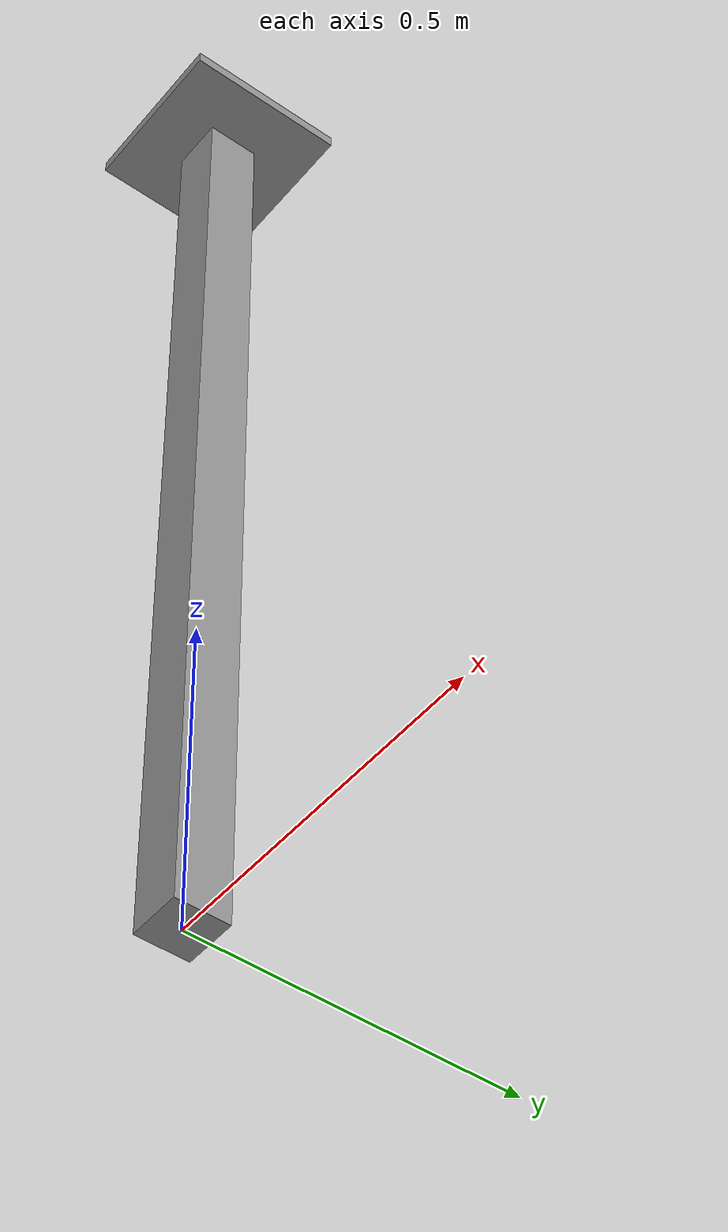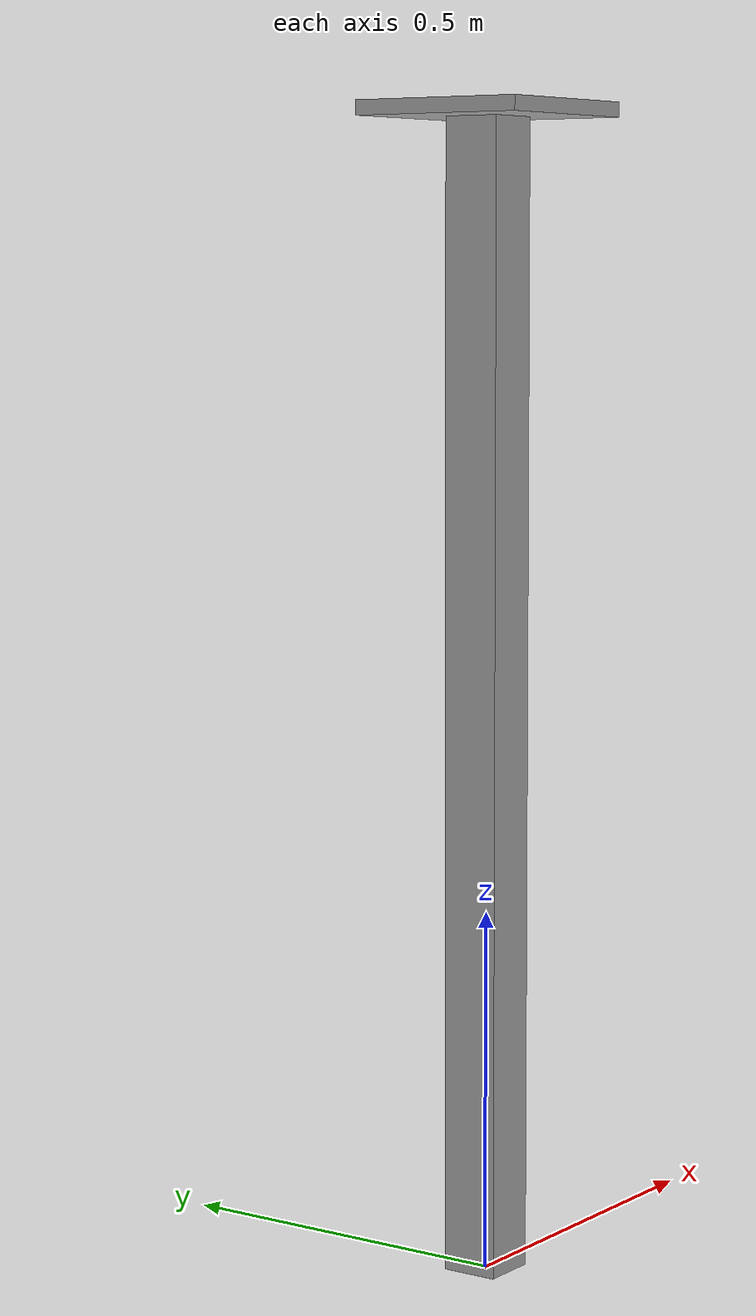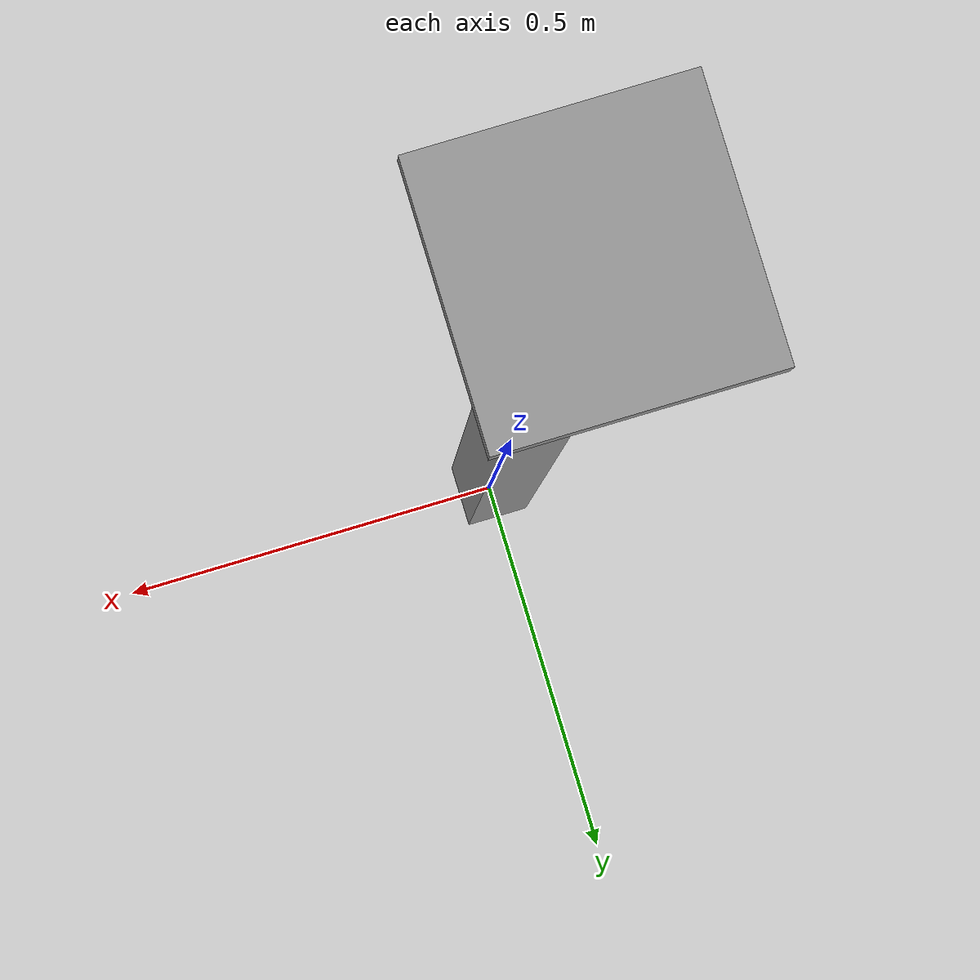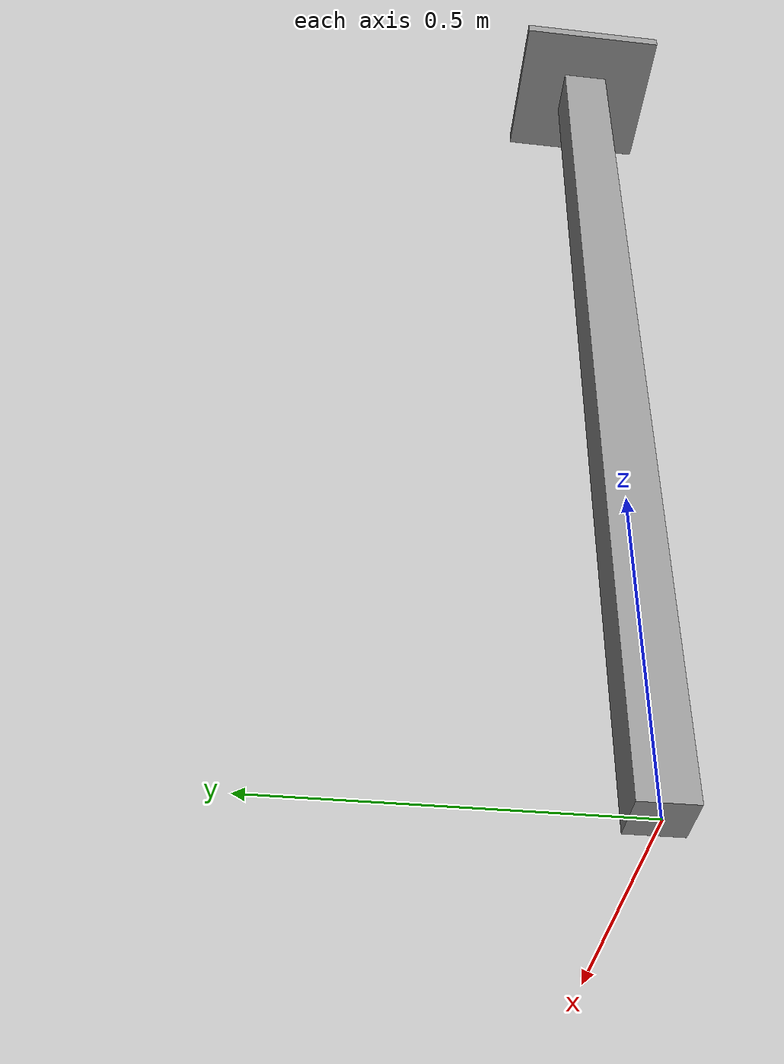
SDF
<?xml version="1.0"?>
<sdf version="1.6">
<model name="ur5_base">
<static>true</static>
<link name="top_plate">
<pose>0 0 1.58 0 0 0</pose>
<collision name="top_plate_collision">
<geometry> <box>
<size>0.25 0.25 0.02</size> </box>
</geometry> <surface>
<contact> <collide_bitmask>0x01</collide_bitmask>
</contact> </surface> </collision>
<visual name="top_plate_visual"> <geometry>
<box>
<size>0.25 0.25 0.02</size>
</box> </geometry> <material>
<script> <uri>file://media/materials/scripts/gazebo.material</uri> <name>Gazebo/Grey</name>
</script> </material>
</visual> </link>
<link name="leg1">
<pose>0 0 0.785 0 0 0</pose> <collision name="leg1_collision">
<geometry> <box>
<size>0.08 0.08 1.57</size> </box>
</geometry>
</collision>
<visual name="leg1_visual">
<geometry> <box>
<size>0.08 0.08 1.57</size> </box>
</geometry> <material>
<script> <uri>file://media/materials/scripts/gazebo.material</uri> <name>Gazebo/Grey</name>
</script> </material>
</visual> </link>
</model> </sdf>
